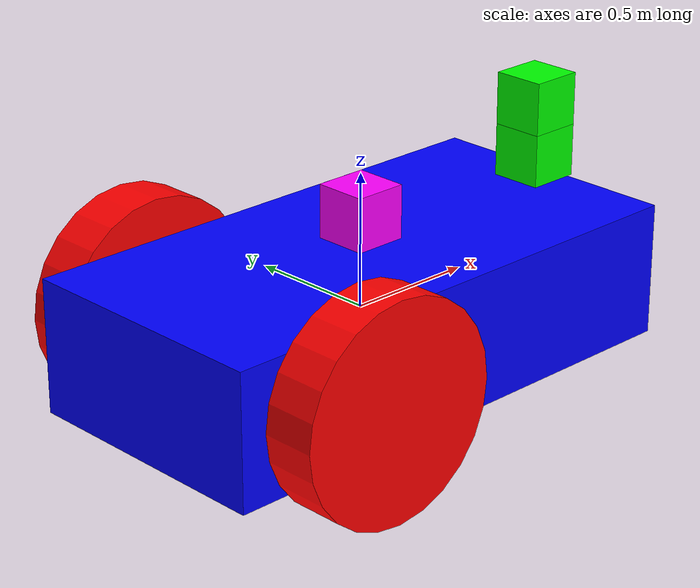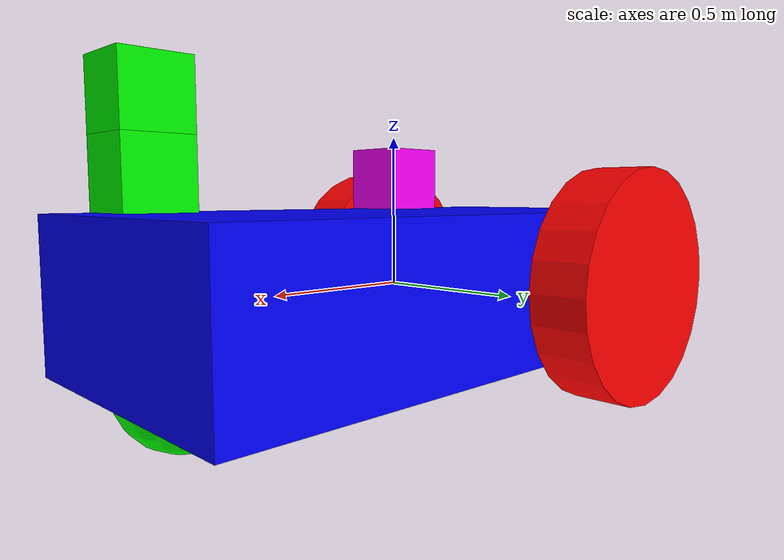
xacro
<?xml version="1.0"?>
<!-- Revolute-Revolute Manipulator -->
<robot name="diffbot" xmlns:xacro="http://www.ros.org/wiki/xacro">

  <xacro:include filename="$(find diffbot_gazebo)/urdf/ros2_control/diffbot.gazebo.xacro"/>
  <xacro:include filename="$(find diffbot_gazebo)/urdf/ros2_control/diffbot.ros2_control.xacro"/>

  <!-- Chassis -->
  <link name="base_footprint"/>

    <joint name="base_joint" type="fixed">
        <parent link="base_footprint"/>
        <child link="base_link"/>
        <origin xyz="0.0 0 0" rpy="0 0 0.0" />
    </joint>

  <link name="base_link">
    <visual>
      <geometry>
        <box size="2.0 1.0 0.5"/>
      </geometry>
      <material name="blue">
        <color rgba="0.0 0.0 1.0 1"/>
      </material>
    </visual>
    <collision>
      <geometry>
        <box size="2.0 1.0 0.5"/>
      </geometry>
    </collision>
    <inertial>
      <mass value="1.14395"/>
      <inertia ixx="0.126164" ixy="0" ixz="0" iyy="0.416519" iyz="0" izz="0.481014"/>
    </inertial>
  </link>

  <!-- Left Wheel -->
  <link name="left_wheel">
    <visual>
      <geometry>
        <cylinder radius="0.4" length="0.2"/>
      </geometry>
      <material name="red">
        <color rgba="1.0 0.0 0.0 1"/>
      </material>
    </visual>
    <collision>
      <geometry>
        <cylinder radius="0.4" length="0.2"/>
      </geometry>
    </collision>
    <inertial>
      <mass value="2.0"/>
      <inertia ixx="0.145833" ixy="0" ixz="0" iyy="0.145833" iyz="0" izz="0.125"/>
    </inertial>
  </link>

  <!-- Right Wheel -->
  <link name="right_wheel">
    <visual>
      <geometry>
        <cylinder radius="0.4" length="0.2"/>
      </geometry>
      <material name="red">
        <color rgba="1.0 0.0 0.0 1"/>
      </material>
    </visual>
    <collision>
      <geometry>
        <cylinder radius="0.4" length="0.2"/>
      </geometry>
    </collision>
    <inertial>
      <mass value="1.0"/>
      <inertia ixx="0.145833" ixy="0" ixz="0" iyy="0.145833" iyz="0" izz="0.125"/>
    </inertial>
  </link>

  <!-- Caster Wheel -->
  <link name="caster">
    <visual>
      <geometry>
        <sphere radius="0.2"/>
      </geometry>
      <material name="green">
        <color rgba="0.0 1.0 0.0 1"/>
      </material>
    </visual>
    <collision>
      <geometry>
        <sphere radius="0.2"/>
      </geometry>
    </collision>
    <inertial>
      <mass value="1.0"/>
      <inertia ixx="0.1" ixy="0" ixz="0" iyy="0.1" iyz="0" izz="0.1"/>
    </inertial>
  </link>

  <!-- depth_cam -->
  <link name="camera_link">
    <visual>
      <geometry>
        <box size="0.2 0.2 0.2"/>
      </geometry>
      <material name="green">
        <color rgba="0.0 1.0 0.0 1"/>
      </material>
    </visual>
    <collision>
      <geometry>
        <box size="0.2 0.2 0.2"/>
      </geometry>
    </collision>
    <inertial>
      <mass value="1.0"/>
      <inertia ixx="0.1" ixy="0" ixz="0" iyy="0.1" iyz="0" izz="0.1"/>
    </inertial>
  </link>

  <!-- lidar -->
  <link name="lidar">
    <visual>
      <geometry>
        <box size="0.2 0.2 0.2"/>
      </geometry>
      <material name="red">
        <color rgba="0.0 1.0 0.0 1"/>
      </material>
    </visual>
    <collision>
      <geometry>
        <box size="0.2 0.2 0.2"/>
      </geometry>
    </collision>
    <inertial>
      <mass value="1.0"/>
      <inertia ixx="0.1" ixy="0" ixz="0" iyy="0.1" iyz="0" izz="0.1"/>
    </inertial>
  </link>

  <!-- imu -->
  <link name="imu">
    <visual>
      <geometry>
        <box size="0.2 0.2 0.2"/>
      </geometry>
      <material name="red">
        <color rgba="1.0 0.0 1.0 1"/>
      </material>
    </visual>
    <collision>
      <geometry>
        <box size="0.2 0.2 0.2"/>
      </geometry>
    </collision>
    <inertial>
      <mass value="1.0"/>
      <inertia ixx="0.1" ixy="0" ixz="0" iyy="0.1" iyz="0" izz="0.1"/>
    </inertial>
  </link>

  <!-- Joints -->
  <joint name="left_wheel_joint" type="continuous">
    <parent link="base_link"/>
    <child link="left_wheel"/>
    <origin xyz="-0.5 0.6 0" rpy="-1.5707 0 0"/>
    <axis xyz="0 0 1"/>
    <dynamics damping="0.02"/>
  </joint>

  <joint name="right_wheel_joint" type="continuous">
    <parent link="base_link"/>
    <child link="right_wheel"/>
    <origin xyz="-0.5 -0.6 0" rpy="-1.5707 0 0"/>
    <axis xyz="0 0 1"/>
    <dynamics damping="0.02"/>
  </joint>

  <joint name="caster_joint" type="fixed">
    <parent link="base_link"/>
    <child link="caster"/>
    <origin xyz="0.8 0 -0.2" rpy="0 0 0"/>
  </joint>

  <joint name="depth_joint" type="fixed">
    <parent link="base_link"/>
    <child link="camera_link"/>
    <origin xyz="0.9 0 0.36" rpy="0 0 0"/>
  </joint>

  <joint name="lidar_joint" type="fixed">
    <parent link="base_link"/>
    <child link="lidar"/>
    <origin xyz="0.9 0 0.56" rpy="0 0 0"/>
  </joint>

  <joint name="imu_joint" type="fixed">
    <parent link="base_link"/>
    <child link="imu"/>
    <origin xyz="0.0 0 0.36" rpy="0 0 0"/>
  </joint>

</robot>

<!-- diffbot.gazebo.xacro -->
<!-- Revolute-Revolute Manipulator -->
<robot name="diffbot" xmlns:xacro="http://www.ros.org/wiki/xacro">

  <xacro:property name="M_PI" value="3.1415926535897931" />
  <xacro:property name="d435_cam_width" value="0.090"/>
  <xacro:property name="d435_cam_height" value="0.025"/>
  <xacro:property name="d435_cam_depth" value="0.02505"/>
  <xacro:property name="d435_cam_depth_to_infra1_offset" value="0.0"/>
  <xacro:property name="d435_cam_depth_to_infra2_offset" value="-0.050"/>
  <xacro:property name="d435_cam_depth_to_color_offset" value="0.015"/>
  <xacro:property name="camera_tilt_angle_deg" value="5"/>

  <joint name="camera_depth_joint" type="fixed">
    <origin xyz="0 0 0" rpy="0 0 0"/>
    <parent link="camera_link"/>
    <child link="camera_depth_frame" />
  </joint>
  <link name="camera_depth_frame"/>

  <joint name="camera_depth_optical_joint" type="fixed">
    <origin xyz="0 0 0" rpy="${-M_PI/2} 0 ${-M_PI/2}" />
    <parent link="camera_depth_frame" />
    <child link="camera_depth_optical_frame" />
  </joint>
  <link name="camera_depth_optical_frame"/>

  <joint name="camera_infra1_joint" type="fixed">
    <origin xyz="0 ${d435_cam_depth_to_infra1_offset} 0" rpy="0 0 0" />
    <parent link="camera_link" />
    <child link="camera_infra1_frame" />
  </joint>
  <link name="camera_infra1_frame"/>

  <joint name="camera_infra1_optical_joint" type="fixed">
    <origin xyz="0 0 0" rpy="${-M_PI/2} 0 ${-M_PI/2}" />
    <parent link="camera_infra1_frame" />
    <child link="camera_infra1_optical_frame" />
  </joint>
  <link name="camera_infra1_optical_frame"/>

  <joint name="camera_infra2_joint" type="fixed">
    <origin xyz="0 ${d435_cam_depth_to_infra2_offset} 0" rpy="0 0 0" />
    <parent link="camera_link" />
    <child link="camera_infra2_frame" />
  </joint>
  <link name="camera_infra2_frame"/>

  <joint name="camera_infra2_optical_joint" type="fixed">
    <origin xyz="0 0 0" rpy="${-M_PI/2} 0 ${-M_PI/2}" />
    <parent link="camera_infra2_frame" />
    <child link="camera_infra2_optical_frame" />
  </joint>
  <link name="camera_infra2_optical_frame"/>

  <joint name="camera_color_joint" type="fixed">
    <origin xyz="0 ${d435_cam_depth_to_color_offset} 0" rpy="0 0 0" />
    <parent link="camera_link" />
    <child link="camera_color_frame" />
  </joint>
  <link name="camera_color_frame"/>

  <joint name="camera_color_optical_joint" type="fixed">
    <origin xyz="0 0 0" rpy="${-M_PI/2} 0 ${-M_PI/2}" />
    <parent link="camera_color_frame" />
    <child link="camera_color_optical_frame" />
  </joint>
  <link name="camera_color_optical_frame"/>

   <gazebo reference="camera_link">
    <sensor name="camera" type="rgbd_camera">
      <camera>
        <horizontal_fov>1.5184</horizontal_fov>
        <image>
          <width>640</width>
          <height>480</height>
        </image>
        <clip>
          <near>0.05</near>
          <far>8.0</far>
        </clip>
      </camera>
      <always_on>1</always_on>
      <gz_frame_id>camera_link</gz_frame_id>
      <topic>camera</topic>
      <update_rate>5</update_rate>
      <visualize>true</visualize>
    </sensor>
  </gazebo>

      <gazebo reference="lidar">
        <sensor name='gpu_lidar' type='gpu_lidar'>
          <pose>0 0 0 0 0 0</pose>
          <topic>scan</topic>
          <gz_frame_id>lidar</gz_frame_id>
          <update_rate>10</update_rate>
          <lidar>
            <scan>
              <horizontal>
                <samples>640</samples>
                <resolution>1</resolution>
                <min_angle>-1.396263</min_angle>
                <max_angle>1.396263</max_angle>
              </horizontal>
              <vertical>
                <samples>1</samples>
                <resolution>1</resolution>
                <min_angle>0.0</min_angle>
                <max_angle>0.0</max_angle>
              </vertical>
            </scan>
            <range>
              <min>0.08</min>
              <max>10.0</max>
              <resolution>0.01</resolution>
            </range>
          </lidar>
          <visualize>true</visualize>
        </sensor>
      </gazebo>

  <gazebo>

        <plugin filename="gz-sim-sensors-system" name="gz::sim::systems::Sensors">
            <render_engine>ogre2</render_engine>
        </plugin>

        <plugin filename="gz-sim-imu-system" name="gz::sim::systems::Imu">
        </plugin>

  <!-- Gazebo ROS 2 Control plugin -->
        <plugin filename="gz_ros2_control-system" name="gz_ros2_control::GazeboSimROS2ControlPlugin">
            <parameters>$(find diffbot_gazebo)/config/diffbot_controllers.yaml</parameters>
            <ros>
                <remapping>/controller_manager/robot_description:=/robot_description</remapping>
            </ros>
        </plugin>

  </gazebo>

    <gazebo reference="imu">
        <sensor name="imu_sensor" type="imu">
            <always_on>1</always_on>
            <update_rate>1</update_rate>
            <gz_frame_id>imu</gz_frame_id>
            <visualize>true</visualize>
            <topic>imu</topic>
        </sensor>
    </gazebo>

   <gazebo reference="left_wheel">

      <collision>
        <surface>
          <friction>
            <ode>
              <mu>1</mu>
              <mu2>1</mu2>
              <slip1>0.035</slip1>
              <slip2>0</slip2>
              <fdir1>0 0 1</fdir1>
            </ode>
            <bullet>
              <friction>1</friction>
              <friction2>1</friction2>
              <rolling_friction>0.1</rolling_friction>
            </bullet>
          </friction>
        </surface>
      </collision>

  </gazebo>

   <gazebo reference="right_wheel">
      <collision>
        <surface>
          <friction>
            <ode>
              <mu>1</mu>
              <mu2>1</mu2>
              <slip1>0.035</slip1>
              <slip2>0</slip2>
              <fdir1>0 0 1</fdir1>
            </ode>
            <bullet>
              <friction>1</friction>
              <friction2>1</friction2>
              <rolling_friction>0.1</rolling_friction>
            </bullet>
          </friction>
        </surface>
      </collision>

  </gazebo>

   <gazebo reference="caster">

      <collision>
        <surface>
          <friction>
            <ode>
              <mu>1</mu>
              <mu2>1</mu2>
              <slip1>0.035</slip1>
              <slip2>0</slip2>
              <fdir1>0 0 1</fdir1>
            </ode>
            <bullet>
              <friction>1</friction>
              <friction2>1</friction2>
              <rolling_friction>0.1</rolling_friction>
            </bullet>
          </friction>
        </surface>
      </collision>
 </gazebo>

</robot>
